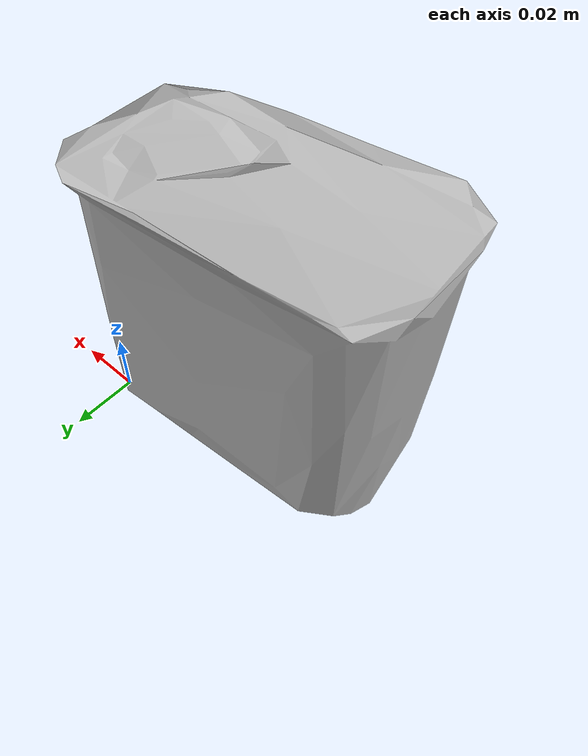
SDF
<?xml version='1.0'?>
<sdf version="1.4">
  <model name="010_potted_meat_can">
    <static>false</static>
    <link name="link">
      <inertial>
        <pose>-0.032864692775364426 -0.02636385143786619 0.03982268377886145 -1.5663892955157026 -0.006446032068884857 1.6260120354828353</pose>
        <mass>0.041968474357377834</mass>
        <inertia>
          <ixx>5.4895304890998836e-05</ixx>
          <ixy>2.240589807496533e-21</ixy>
          <ixz>2.5849012169549382e-21</ixz>
          <iyy>4.046889296735622e-05</iyy>
          <iyz>1.9204630221543826e-24</iyz>
          <izz>3.363362413210136e-05</izz>
        </inertia>
      </inertial>
      <collision name="collision">
        <geometry>
          <mesh>
            <!-- Use a downsampled mesh for collisions -->
            <uri>model:///010_potted_meat_can/010_potted_meat_can_250_collision.stl</uri>
	        </mesh>
        </geometry>
        <surface>
      </surface>
      </collision>
      <visual name="visual">
        <geometry>
          <mesh>
            <uri>model:///010_potted_meat_can/textured.obj</uri>
	        </mesh>
        </geometry>
        <material>
          <script>
            <uri>model:///010_potted_meat_can/010_potted_meat_can.material</uri>
            <name>010_potted_meat_can</name>
          </script>
        </material>
      </visual>
    </link>
  </model>
</sdf>
